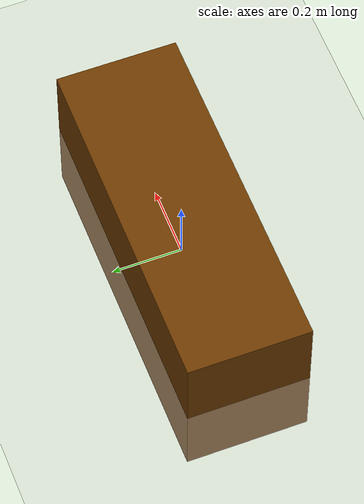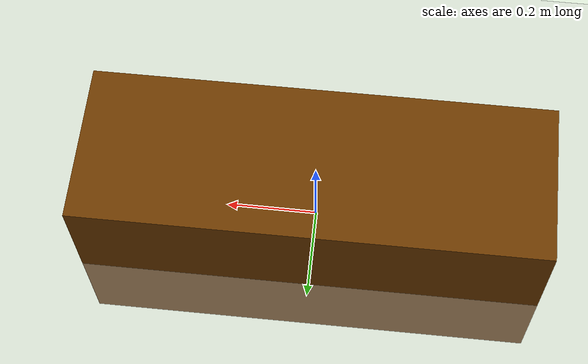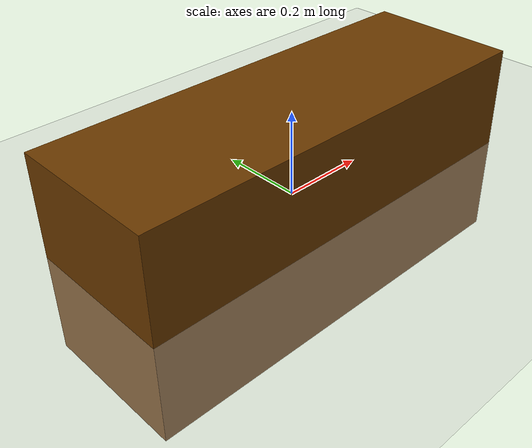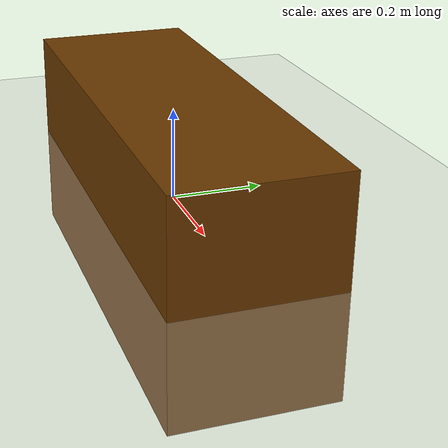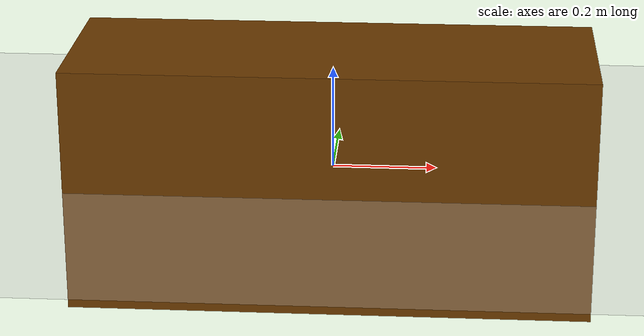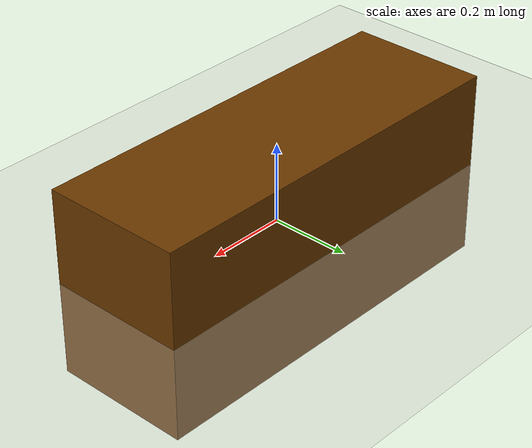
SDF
<?xml version="1.0" ?>
<sdf version="1.5">
    <world name="default">
        <physics type="ode">
        <!-- real_time_factor = max_step_size * real_time_update_rate, default equal to 1 -->
        <max_step_size>0.001</max_step_size>
        <real_time_update_rate>1000</real_time_update_rate>

        <gravity>0 0 -9.81</gravity>
            <ode>
                <solver>
                <type>quick</type>
                <iters>80</iters>
                <sor>1.3</sor>
                </solver>
                <constraints>
                <cfm>0.0</cfm>
                <erp>0.2</erp>
                <contact_max_correcting_vel>0.1</contact_max_correcting_vel>
                <contact_surface_layer>0.0001</contact_surface_layer>
                </constraints>
            </ode>
        </physics>

        <scene>
        <sky>
            <clouds>
                <speed>12</speed>
            </clouds>
        </sky>
        </scene>
        <!-- A global light source -->
        <include>
            <uri>model://sun</uri>
        </include>
        <!-- A ground plane -->
        <include>
            <uri>model://ground_plane</uri>
        </include>
        <!-- environment blocks, obstacles or stairs -->
        <model name="static_environment">
        <static>true</static>
            <link name="static_box">
                <pose>0 0 0 0 0 0</pose>
                <collision name="static_box_collision">
                    <geometry>
                        <box>
                            <size>1 0.35 0.475</size>
                        </box>
                    </geometry>
                </collision>
                <visual name="static_box_visual">
                    <geometry>
                        <box>
                            <size>1 0.35 0.475</size>
                        </box>
                    </geometry>
                    <material>
                        <ambient>0.2 0.2 0.2 1.0</ambient>
                        <diffuse>.421 0.225 0.0 1.0</diffuse>
                    </material>
                </visual>
            </link>
        </model>

    </world>
</sdf>
